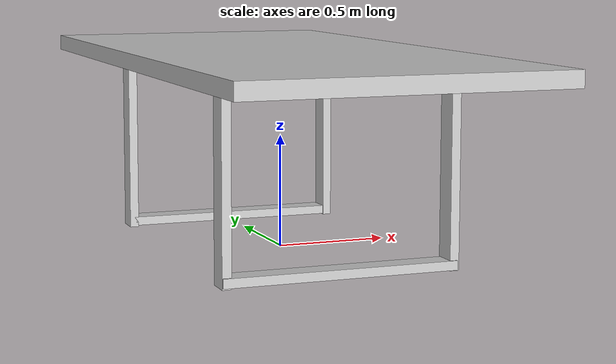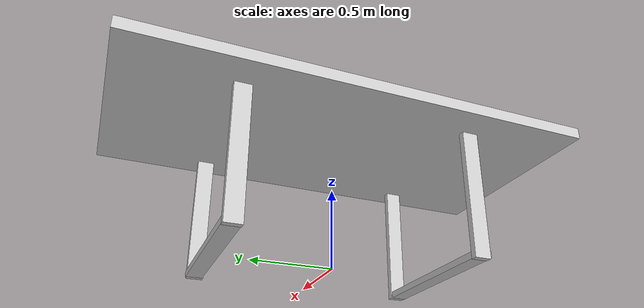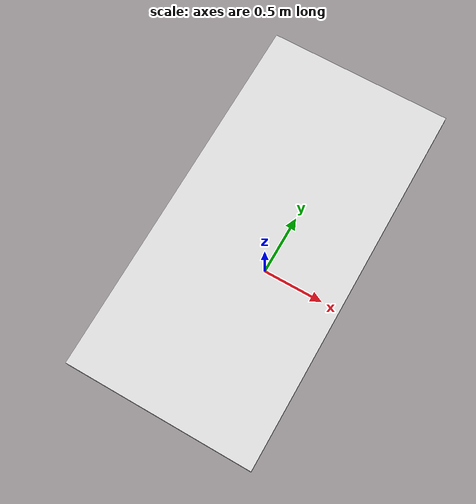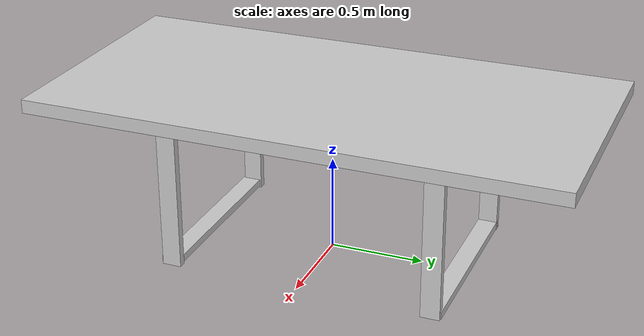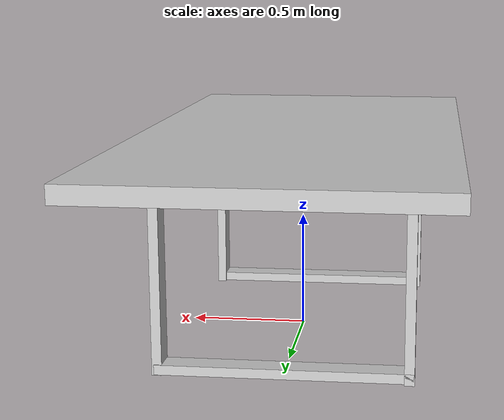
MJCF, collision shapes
<mujoco model="table_arena">
  <asset>
    <!-- ceramic table texture and material-->
    <texture file="../../textures/martin_novak_wood_table.png" type="cube" name="tex-table"/>
    <material name="table_texture" reflectance="0.0" shininess="0.0" specular="0.2" texrepeat="1 1" texture="tex-table" />
    <!-- steel legs -->
    <texture file="../../textures/martin_novak_wood_table.png" type="cube" name="tex-table-legs"/>
    <material name="table_legs" reflectance="0.8" shininess="0.8" texrepeat="1 1" texture="tex-table-legs" />
    <!-- added table texture and material for domain randomization -->
    <texture  name="textable" builtin="flat" height="512" width="512" rgb1="0.5 0.5 0.5" rgb2="0.5 0.5 0.5"/>
    <material name="table_mat" texture="textable" />

    <texture file="desk/desk_texture.png" name="tex-desk" type="2d"/>
    <material name="desk" reflectance="0.5" texrepeat="1 1" texture="tex-desk" texuniform="false"/>
    <mesh file="desk/desk.obj" name="desk_vis" scale="1.0 1.0 1.0"/>

  </asset>
  <worldbody>
    <body name="study_table" pos="0 0 0" quat="1 0 0 0">
        <geom solimp="0.998 0.998 0.001" solref="0.001 1" density="100" friction="0.95 0.3 0.1" type="mesh" mesh="desk_vis" conaffinity="0" contype="0" group="0" material="desk"/>
        <geom solimp="0.998 0.998 0.001" solref="0.001 1" density="100" friction="0.95 0.3 0.1" type="box" pos="-0.00000 0.00000 0.84929" quat="0.50000 -0.50000 0.50000 0.50000" size="0.03584 0.68946 1.39273" group="1" rgba="0.8 0.8 0.8 0.3"/>
        <geom solimp="0.998 0.998 0.001" solref="0.001 1" density="100" friction="0.95 0.3 0.1" type="box" pos="-0.50048 -0.69064 0.39431" quat="0.00000 0.00000 1.00000 0.00000" size="0.02002 0.05031 0.39407" group="1" rgba="0.8 0.8 0.8 0.3"/>
        <geom solimp="0.998 0.998 0.001" solref="0.001 1" density="100" friction="0.95 0.3 0.1" type="box" pos="0.49617 -0.69064 0.39431" quat="1.00000 -0.00000 -0.00000 -0.00000" size="0.02002 0.05031 0.39407" group="1" rgba="0.8 0.8 0.8 0.3"/>
        <geom solimp="0.998 0.998 0.001" solref="0.001 1" density="100" friction="0.95 0.3 0.1" type="box" pos="0.49617 0.70968 0.39431" quat="0.00000 0.00000 1.00000 0.00000" size="0.02002 0.05032 0.39407" group="1" rgba="0.8 0.8 0.8 0.3"/>
        <geom solimp="0.998 0.998 0.001" solref="0.001 1" density="100" friction="0.95 0.3 0.1" type="box" pos="-0.50048 0.71473 0.39431" quat="1.00000 -0.00000 -0.00000 -0.00000" size="0.02002 0.05031 0.39407" group="1" rgba="0.8 0.8 0.8 0.3"/>
        <geom solimp="0.998 0.998 0.001" solref="0.001 1" density="100" friction="0.95 0.3 0.1" type="box" pos="-0.00488 0.71473 0.02528" quat="0.70811 0.00000 -0.70610 -0.00000" size="0.02002 0.05031 0.51262" group="1" rgba="0.8 0.8 0.8 0.3"/>
        <geom solimp="0.998 0.998 0.001" solref="0.001 1" density="100" friction="0.95 0.3 0.1" type="box" pos="-0.00488 -0.69765 0.02528" quat="0.70811 0.00000 -0.70610 -0.00000" size="0.02002 0.05032 0.51262" group="1" rgba="0.8 0.8 0.8 0.3"/>
     </body>
  </worldbody>
</mujoco>
